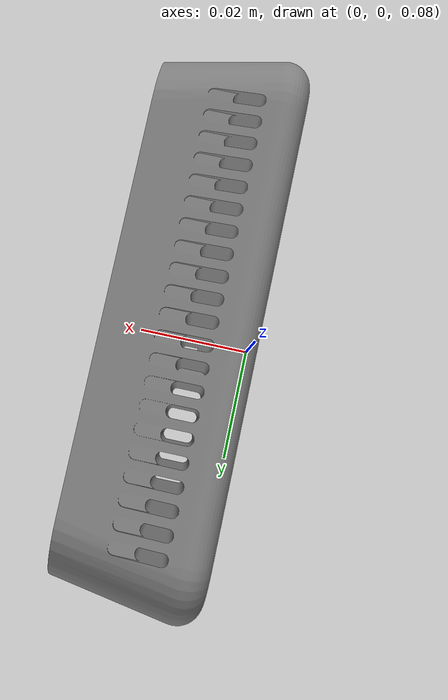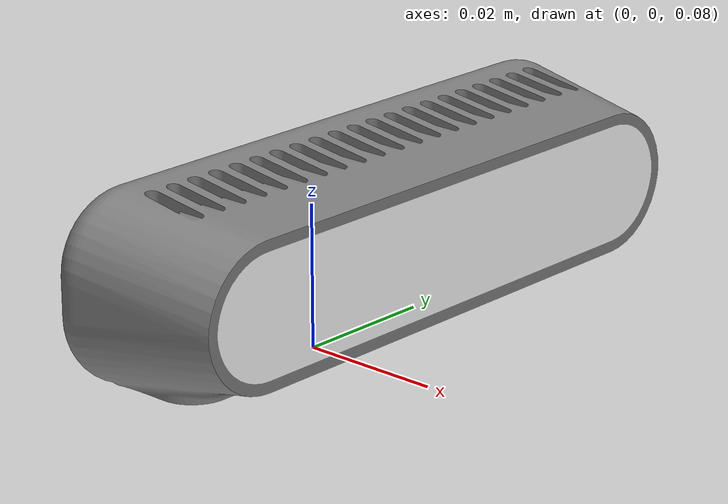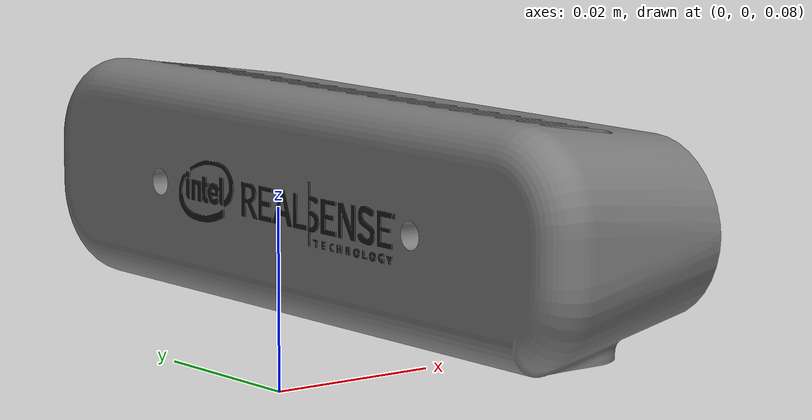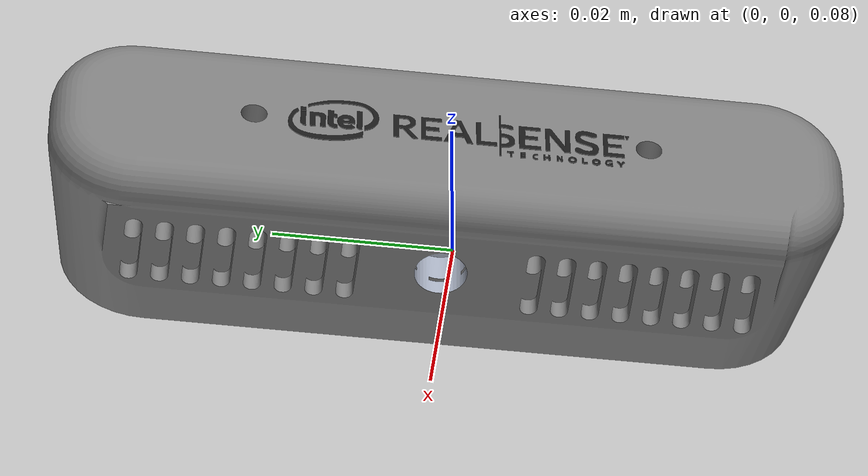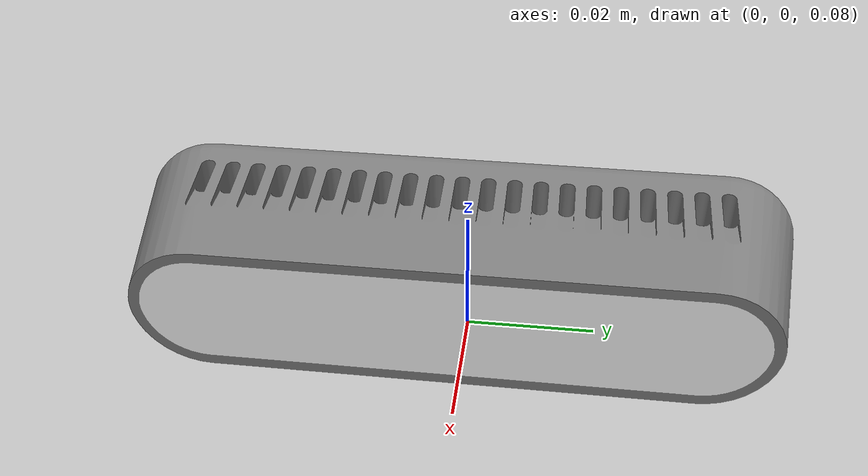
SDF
<?xml version="1.0" ?>
<sdf version="1.7">
  <model name="realsense_camera">
    <pose>0 0 0 0 0 0</pose>

    <link name="camera_link">
      <pose>0 0 0 0 0 0</pose>
      <visual name="camera_visual">
        <pose>0 0 0.1 0 0 1.57</pose>
        <geometry>
          	<mesh>
             <uri>model://realsense_camera/meshes/RealSense_D435.dae</uri>
            </mesh>
          </geometry>
      </visual>

      <collision name="camera_collision">
        <pose>0 0 0 0 0 0</pose>
        <geometry>
            <mesh>
             <uri>model://realsense_camera/meshes/RealSense_D435.dae</uri>
            </mesh>
        </geometry>
      </collision>

      <!-- Left camera sensor -->
      <sensor name="left_camera" type="camera">
        <pose>0 0 0 0 0 0</pose>
        <camera>
          <horizontal_fov>1.3962634</horizontal_fov>
          <image>
            <width>640</width>
            <height>480</height>
            <format>R8G8B8</format>
          </image>
          <clip>
            <near>0.5</near>
            <far>3.5</far>
          </clip>
        </camera>
        <always_on>1</always_on>
        <update_rate>10</update_rate>
        <visualize>true</visualize>
      </sensor>

      <!-- Right camera sensor -->
      <sensor name="right_camera" type="camera">
        <pose>0 0.12 0 0 0 0</pose>
        <camera>
          <horizontal_fov>1.3962634</horizontal_fov>
          <image>
            <width>640</width>
            <height>480</height>
            <format>R8G8B8</format>
          </image>
          <clip>
            <near>0.5</near>
            <far>3.5</far>
          </clip>
        </camera>
        <always_on>1</always_on>
        <update_rate>10</update_rate>
        <visualize>true</visualize>
      </sensor>

      <!-- Inertial properties -->
      <inertial>
        <mass>0.1</mass>
        <inertia>
          <ixx>1e-5</ixx>
          <iyy>1e-5</iyy>
          <izz>1e-5</izz>
          <ixy>0</ixy>
          <ixz>0</ixz>
          <iyz>0</iyz>
        </inertia>
      </inertial>

    </link>
  </model>
</sdf>
